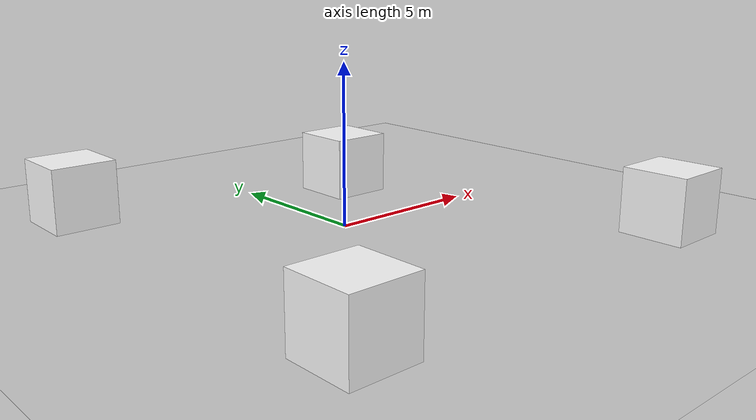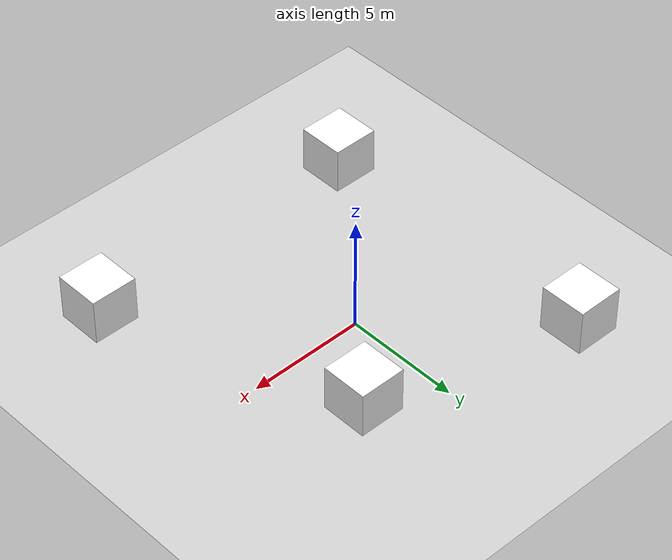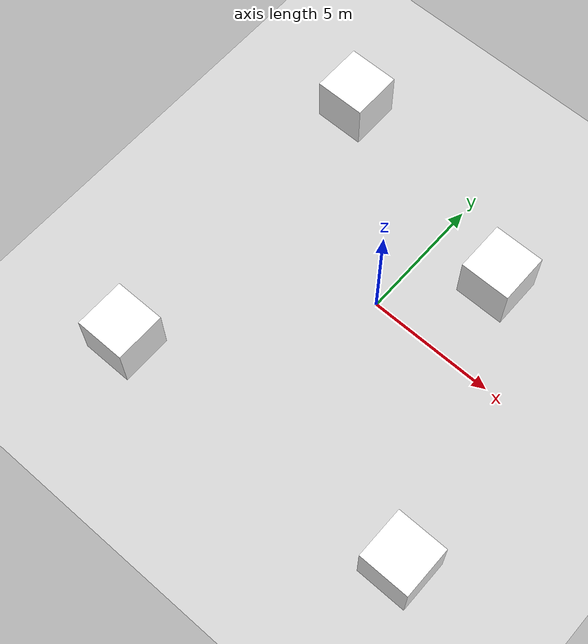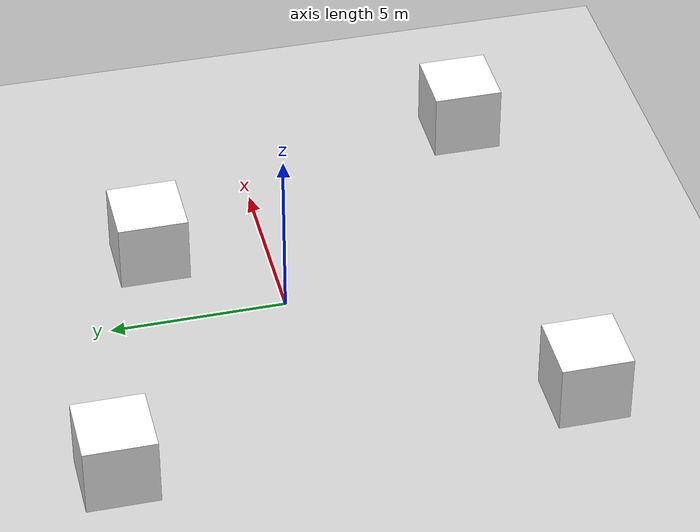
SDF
<sdf version="1.7">
 <world name="default">
  <light name="sun" type="directional">
   <pose>0 0 10 0 -0 0</pose>
   <diffuse>0.8 0.8 0.8 1</diffuse>
   <specular>0.2 0.2 0.2 1</specular>
   <attenuation>
    <range>1000</range>
    <constant>0.9</constant>
    <linear>0.01</linear>
    <quadratic>0.001</quadratic>
   </attenuation>
   <direction>-0.5 0.1 -0.9</direction>
   <spot><inner_angle>0</inner_angle><outer_angle>0</outer_angle><falloff>0</falloff></spot>
  </light>
  <model name="ground_plane">
   <static>1</static>
   <link name="link">
    <collision name="collision">
     <geometry><plane><normal>0 0 1</normal><size>100 100</size></plane></geometry>
     <surface><friction><ode><mu>100</mu><mu2>50</mu2></ode></friction></surface>
    </collision>
    <visual name="visual">
     <cast_shadows>0</cast_shadows>
     <geometry><plane><normal>0 0 1</normal><size>100 100</size></plane></geometry>
     <material>
      <script><uri>file://media/materials/scripts/gazebo.material</uri><name>Gazebo/Grey</name></script>
     </material>
    </visual>
   </link>
  </model>
  <gravity>0 0 -9.8</gravity>
  <magnetic_field>6e-06 2.3e-05 -4.2e-05</magnetic_field>
  <atmosphere type="adiabatic"/>
  <physics type="ode">
   <max_step_size>0.001</max_step_size>
   <real_time_factor>1</real_time_factor>
   <real_time_update_rate>1000</real_time_update_rate>
  </physics>
  <scene><ambient>0.4 0.4 0.4 1</ambient><background>0.7 0.7 0.7 1</background><shadows>1</shadows></scene>
  <spherical_coordinates>
   <surface_model>EARTH_WGS84</surface_model>
   <latitude_deg>0</latitude_deg>
   <longitude_deg>0</longitude_deg>
   <elevation>0</elevation>
   <heading_deg>0</heading_deg>
  </spherical_coordinates>
  <model name="marker2by2">
   <link name="link_1">
    <inertial>
     <mass>2000</mass>
     <inertia><ixx>333.333</ixx><ixy>0</ixy><ixz>0</ixz><iyy>333.333</iyy><iyz>0</iyz><izz>333.333</izz></inertia>
    </inertial>
    <pose>0.023353 0.075603 0.501569 0 -0 0</pose>
    <visual name="visual">
     <pose>0 0 0.5 0 -0 0</pose>
     <geometry><box><size>2 2 2</size></box></geometry>
     <material>
      <lighting>1</lighting>
      <script><uri>file://media/materials/scripts/marker2by2.material</uri><name>Custom/TopTexture</name></script>
      <shader type="pixel"><normal_map>__default__</normal_map></shader>
      <ambient>1 1 1 1</ambient>
      <diffuse>1 1 1 1</diffuse>
      <specular>1 1 1 1</specular>
      <emissive>1 1 1 1</emissive>
     </material>
    </visual>
    <collision name="collision">
     <geometry><box><size>1 1 1</size></box></geometry>
     <surface>
      <friction>
       <ode><mu>1</mu><mu2>1</mu2><fdir1>0 0 0</fdir1><slip1>0</slip1><slip2>0</slip2></ode>
       <torsional>
        <coefficient>1</coefficient>
        <patch_radius>0</patch_radius>
        <surface_radius>0</surface_radius>
        <use_patch_radius>1</use_patch_radius>
        <ode><slip>0</slip></ode>
       </torsional>
      </friction>
      <bounce><restitution_coefficient>0</restitution_coefficient><threshold>1e+06</threshold></bounce>
      <contact>
       <collide_without_contact>0</collide_without_contact>
       <collide_without_contact_bitmask>1</collide_without_contact_bitmask>
       <collide_bitmask>1</collide_bitmask>
       <ode>
        <soft_cfm>0</soft_cfm>
        <soft_erp>0.2</soft_erp>
        <kp>1e+13</kp>
        <kd>1</kd>
        <max_vel>0.01</max_vel>
        <min_depth>0</min_depth>
       </ode>
       <bullet>
        <split_impulse>1</split_impulse>
        <split_impulse_penetration_threshold>-0.01</split_impulse_penetration_threshold>
        <soft_cfm>0</soft_cfm>
        <soft_erp>0.2</soft_erp>
        <kp>1e+13</kp>
        <kd>1</kd>
       </bullet>
      </contact>
     </surface>
    </collision>
   </link>
   <static>0</static>
   <pose>2.77404 3.30794 -0.001569 0 -0 0</pose>
  </model>
  <model name="marker2by2_0">
   <link name="link_1">
    <inertial>
     <mass>2000</mass>
     <inertia><ixx>333.333</ixx><ixy>0</ixy><ixz>0</ixz><iyy>333.333</iyy><iyz>0</iyz><izz>333.333</izz></inertia>
    </inertial>
    <pose>0.023353 0.075603 0.501569 0 -0 0</pose>
    <visual name="visual">
     <pose>0 0 0.5 0 -0 0</pose>
     <geometry><box><size>2 2 2</size></box></geometry>
     <material>
      <lighting>1</lighting>
      <script><uri>file://media/materials/scripts/marker2by2.material</uri><name>Custom/TopTexture</name></script>
      <shader type="pixel"><normal_map>__default__</normal_map></shader>
      <ambient>1 1 1 1</ambient>
      <diffuse>1 1 1 1</diffuse>
      <specular>1 1 1 1</specular>
      <emissive>1 1 1 1</emissive>
     </material>
    </visual>
    <collision name="collision">
     <geometry><box><size>1 1 1</size></box></geometry>
     <surface>
      <friction>
       <ode><mu>1</mu><mu2>1</mu2><fdir1>0 0 0</fdir1><slip1>0</slip1><slip2>0</slip2></ode>
       <torsional>
        <coefficient>1</coefficient>
        <patch_radius>0</patch_radius>
        <surface_radius>0</surface_radius>
        <use_patch_radius>1</use_patch_radius>
        <ode><slip>0</slip></ode>
       </torsional>
      </friction>
      <bounce><restitution_coefficient>0</restitution_coefficient><threshold>1e+06</threshold></bounce>
      <contact>
       <collide_without_contact>0</collide_without_contact>
       <collide_without_contact_bitmask>1</collide_without_contact_bitmask>
       <collide_bitmask>1</collide_bitmask>
       <ode>
        <soft_cfm>0</soft_cfm>
        <soft_erp>0.2</soft_erp>
        <kp>1e+13</kp>
        <kd>1</kd>
        <max_vel>0.01</max_vel>
        <min_depth>0</min_depth>
       </ode>
       <bullet>
        <split_impulse>1</split_impulse>
        <split_impulse_penetration_threshold>-0.01</split_impulse_penetration_threshold>
        <soft_cfm>0</soft_cfm>
        <soft_erp>0.2</soft_erp>
        <kp>1e+13</kp>
        <kd>1</kd>
       </bullet>
      </contact>
     </surface>
    </collision>
   </link>
   <static>0</static>
   <pose>-5.7579 -7.10203 -0.001569 0 -0 0</pose>
  </model>
  <model name="marker2by2_1">
   <link name="link_1">
    <inertial>
     <mass>2000</mass>
     <inertia><ixx>333.333</ixx><ixy>0</ixy><ixz>0</ixz><iyy>333.333</iyy><iyz>0</iyz><izz>333.333</izz></inertia>
    </inertial>
    <pose>0.023353 0.075603 0.501569 0 -0 0</pose>
    <visual name="visual">
     <pose>0 0 0.5 0 -0 0</pose>
     <geometry><box><size>2 2 2</size></box></geometry>
     <material>
      <lighting>1</lighting>
      <script><uri>file://media/materials/scripts/marker2by2.material</uri><name>Custom/TopTexture</name></script>
      <shader type="pixel"><normal_map>__default__</normal_map></shader>
      <ambient>1 1 1 1</ambient>
      <diffuse>1 1 1 1</diffuse>
      <specular>1 1 1 1</specular>
      <emissive>1 1 1 1</emissive>
     </material>
    </visual>
    <collision name="collision">
     <geometry><box><size>1 1 1</size></box></geometry>
     <surface>
      <friction>
       <ode><mu>1</mu><mu2>1</mu2><fdir1>0 0 0</fdir1><slip1>0</slip1><slip2>0</slip2></ode>
       <torsional>
        <coefficient>1</coefficient>
        <patch_radius>0</patch_radius>
        <surface_radius>0</surface_radius>
        <use_patch_radius>1</use_patch_radius>
        <ode><slip>0</slip></ode>
       </torsional>
      </friction>
      <bounce><restitution_coefficient>0</restitution_coefficient><threshold>1e+06</threshold></bounce>
      <contact>
       <collide_without_contact>0</collide_without_contact>
       <collide_without_contact_bitmask>1</collide_without_contact_bitmask>
       <collide_bitmask>1</collide_bitmask>
       <ode>
        <soft_cfm>0</soft_cfm>
        <soft_erp>0.2</soft_erp>
        <kp>1e+13</kp>
        <kd>1</kd>
        <max_vel>0.01</max_vel>
        <min_depth>0</min_depth>
       </ode>
       <bullet>
        <split_impulse>1</split_impulse>
        <split_impulse_penetration_threshold>-0.01</split_impulse_penetration_threshold>
        <soft_cfm>0</soft_cfm>
        <soft_erp>0.2</soft_erp>
        <kp>1e+13</kp>
        <kd>1</kd>
       </bullet>
      </contact>
     </surface>
    </collision>
   </link>
   <static>0</static>
   <pose>-5.99347 5.76586 -0.001569 0 -0 0</pose>
  </model>
  <model name="marker2by2_2">
   <link name="link_1">
    <inertial>
     <mass>2000</mass>
     <inertia><ixx>333.333</ixx><ixy>0</ixy><ixz>0</ixz><iyy>333.333</iyy><iyz>0</iyz><izz>333.333</izz></inertia>
    </inertial>
    <pose>0.023353 0.075603 0.501569 0 -0 0</pose>
    <visual name="visual">
     <pose>0 0 0.5 0 -0 0</pose>
     <geometry><box><size>2 2 2</size></box></geometry>
     <material>
      <lighting>1</lighting>
      <script><uri>file://media/materials/scripts/marker2by2.material</uri><name>Custom/TopTexture</name></script>
      <shader type="pixel"><normal_map>__default__</normal_map></shader>
      <ambient>1 1 1 1</ambient>
      <diffuse>1 1 1 1</diffuse>
      <specular>1 1 1 1</specular>
      <emissive>1 1 1 1</emissive>
     </material>
    </visual>
    <collision name="collision">
     <geometry><box><size>1 1 1</size></box></geometry>
     <surface>
      <friction>
       <ode><mu>1</mu><mu2>1</mu2><fdir1>0 0 0</fdir1><slip1>0</slip1><slip2>0</slip2></ode>
       <torsional>
        <coefficient>1</coefficient>
        <patch_radius>0</patch_radius>
        <surface_radius>0</surface_radius>
        <use_patch_radius>1</use_patch_radius>
        <ode><slip>0</slip></ode>
       </torsional>
      </friction>
      <bounce><restitution_coefficient>0</restitution_coefficient><threshold>1e+06</threshold></bounce>
      <contact>
       <collide_without_contact>0</collide_without_contact>
       <collide_without_contact_bitmask>1</collide_without_contact_bitmask>
       <collide_bitmask>1</collide_bitmask>
       <ode>
        <soft_cfm>0</soft_cfm>
        <soft_erp>0.2</soft_erp>
        <kp>1e+13</kp>
        <kd>1</kd>
        <max_vel>0.01</max_vel>
        <min_depth>0</min_depth>
       </ode>
       <bullet>
        <split_impulse>1</split_impulse>
        <split_impulse_penetration_threshold>-0.01</split_impulse_penetration_threshold>
        <soft_cfm>0</soft_cfm>
        <soft_erp>0.2</soft_erp>
        <kp>1e+13</kp>
        <kd>1</kd>
       </bullet>
      </contact>
     </surface>
    </collision>
   </link>
   <static>0</static>
   <pose>6.70834 -6.93927 -0.001569 0 -0 0</pose>
  </model>
 </world>
</sdf>
